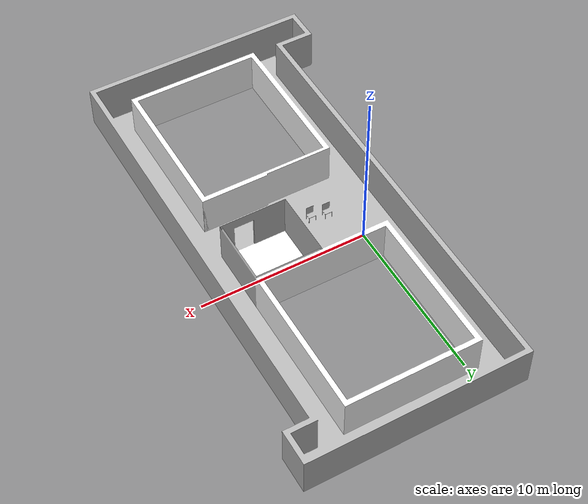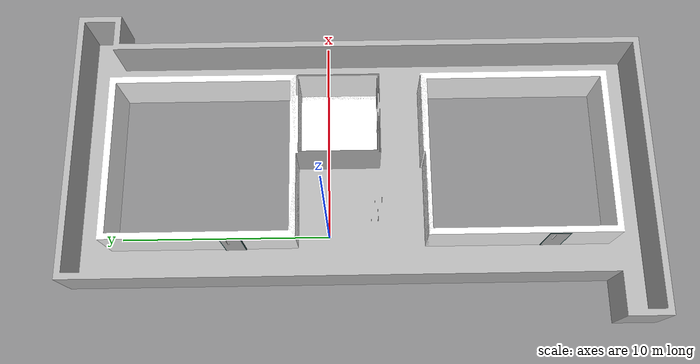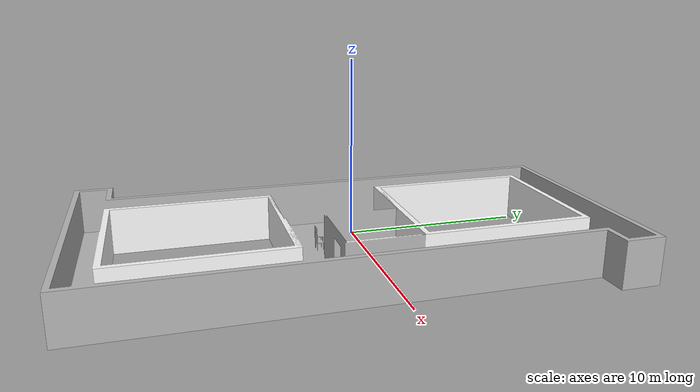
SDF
<sdf version="1.6">
 <world name="world">
  <model name="levine">
   <static>1</static>
   <link name="body">
    <visual name="visual">
     <pose>-2 -15 0.01 0 -0 0</pose>
     <geometry><mesh><uri>model://levine_vio/levine.dae</uri></mesh></geometry>
    </visual>
    <collision name="collision">
     <pose>-2 -15 -0.01 0 -0 0</pose>
     <geometry><mesh><uri>model://levine_vio/levine.stl</uri></mesh></geometry>
    </collision>
   </link>
  </model>
  <light name="sun" type="directional">
   <pose>0 0 10 0 -0 0</pose>
   <diffuse>0.8 0.8 0.8 1</diffuse>
   <specular>0.2 0.2 0.2 1</specular>
   <attenuation>
    <range>1000</range>
    <constant>0.9</constant>
    <linear>0.01</linear>
    <quadratic>0.001</quadratic>
   </attenuation>
   <direction>-0.5 0.1 -0.9</direction>
  </light>
  <gravity>0 0 -9.8</gravity>
  <magnetic_field>6e-06 2.3e-05 -4.2e-05</magnetic_field>
  <atmosphere type="adiabatic"/>
  <physics name="default_physics" default="0" type="ode">
   <max_step_size>0.001</max_step_size>
   <real_time_factor>1</real_time_factor>
   <real_time_update_rate>1000</real_time_update_rate>
  </physics>
  <scene><ambient>0.4 0.4 0.4 1</ambient><background>0.7 0.7 0.7 1</background><shadows>1</shadows></scene>
  <spherical_coordinates>
   <surface_model>EARTH_WGS84</surface_model>
   <latitude_deg>0</latitude_deg>
   <longitude_deg>0</longitude_deg>
   <elevation>0</elevation>
   <heading_deg>0</heading_deg>
  </spherical_coordinates>
  <light name="sun_clone" type="directional">
   <pose>6.22187 -3.64583 10 0 -0 0</pose>
   <diffuse>0.8 0.8 0.8 1</diffuse>
   <specular>0.2 0.2 0.2 1</specular>
   <direction>-0.483368 0.096674 -0.870063</direction>
   <attenuation>
    <range>1000</range>
    <constant>0.9</constant>
    <linear>0.01</linear>
    <quadratic>0.001</quadratic>
   </attenuation>
  </light>
  <light name="sun_clone_0" type="directional">
   <pose>5.26964 11.7565 10 0 -0 0</pose>
   <diffuse>0.8 0.8 0.8 1</diffuse>
   <specular>0.2 0.2 0.2 1</specular>
   <direction>-0.483368 0.096674 -0.870063</direction>
   <attenuation>
    <range>1000</range>
    <constant>0.9</constant>
    <linear>0.01</linear>
    <quadratic>0.001</quadratic>
   </attenuation>
  </light>
  <light name="sun_clone_1" type="directional">
   <pose>1.38299 -12.4642 10 0 -0 0</pose>
   <diffuse>0.8 0.8 0.8 1</diffuse>
   <specular>0.2 0.2 0.2 1</specular>
   <direction>-0.483368 0.096674 -0.870063</direction>
   <attenuation>
    <range>1000</range>
    <constant>0.9</constant>
    <linear>0.01</linear>
    <quadratic>0.001</quadratic>
   </attenuation>
  </light>
  <light name="user_point_light_0" type="point">
   <pose>1.53382 -0.613277 1 0 -0 0</pose>
   <diffuse>0.5 0.5 0.5 1</diffuse>
   <specular>0.1 0.1 0.1 1</specular>
   <attenuation>
    <range>20</range>
    <constant>0.5</constant>
    <linear>0.01</linear>
    <quadratic>0.001</quadratic>
   </attenuation>
   <cast_shadows>0</cast_shadows>
   <direction>0 0 -1</direction>
  </light>
  <light name="user_point_light_1" type="point">
   <pose>-1.2014 5.88519 1 0 -0 0</pose>
   <diffuse>0.5 0.5 0.5 1</diffuse>
   <specular>0.1 0.1 0.1 1</specular>
   <attenuation>
    <range>20</range>
    <constant>0.5</constant>
    <linear>0.01</linear>
    <quadratic>0.001</quadratic>
   </attenuation>
   <cast_shadows>0</cast_shadows>
   <direction>0 0 -1</direction>
  </light>
  <light name="user_point_light_1_clone" type="point">
   <pose>8.17876 -4.37654 1 0 -0 0</pose>
   <diffuse>0.498039 0.498039 0.498039 1</diffuse>
   <specular>0.0980392 0.0980392 0.0980392 1</specular>
   <direction>0 0 -1</direction>
   <attenuation>
    <range>20</range>
    <constant>0.1</constant>
    <linear>0.01</linear>
    <quadratic>0.001</quadratic>
   </attenuation>
   <cast_shadows>0</cast_shadows>
  </light>
 </world>
</sdf>
